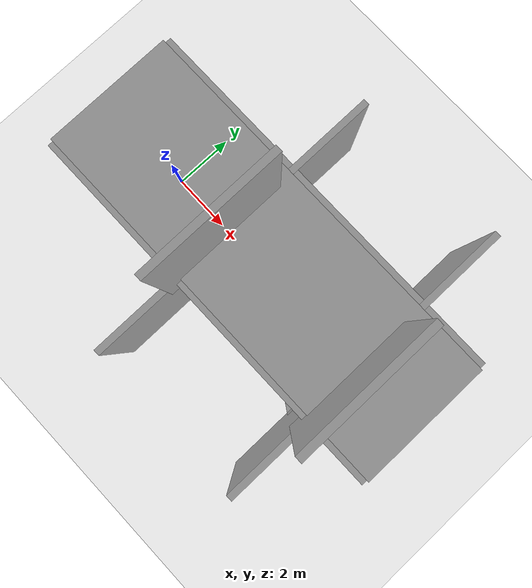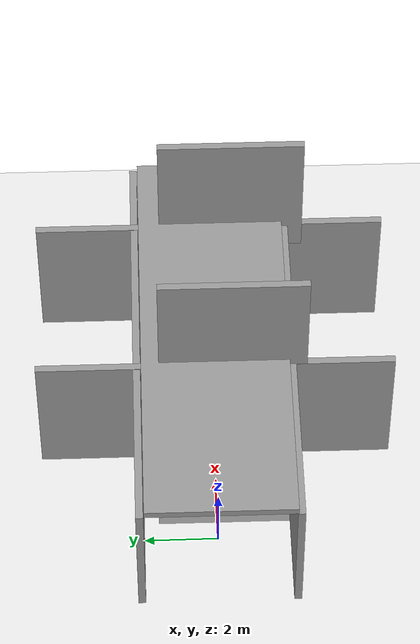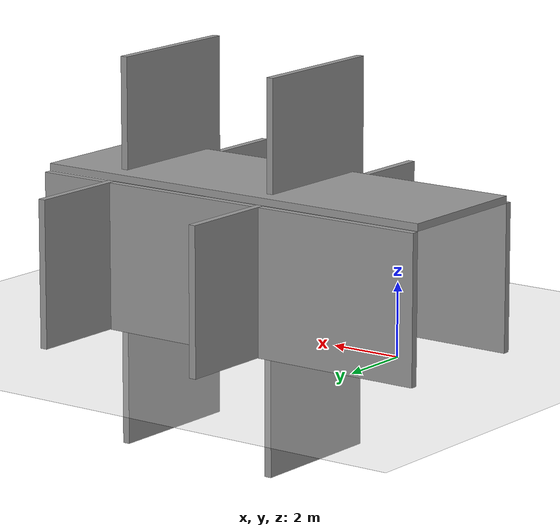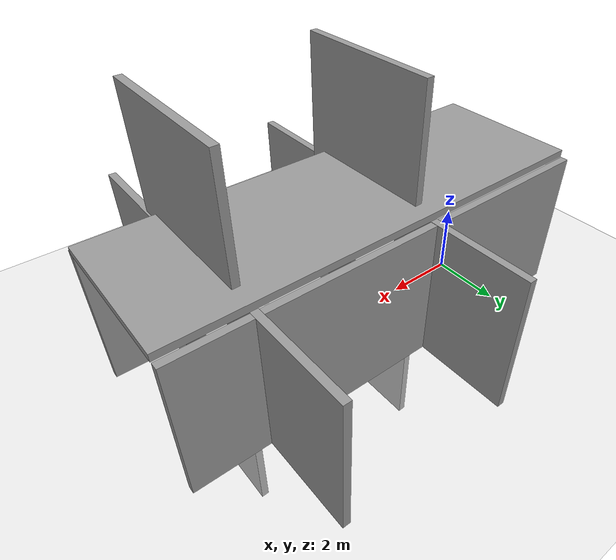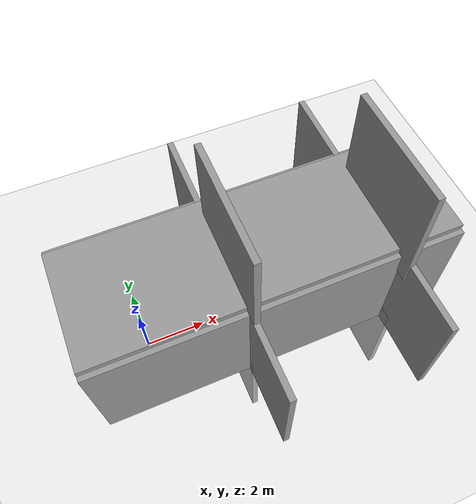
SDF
<sdf version="1.7">
 <world name="default">
  <model name="ground_plane">
   <static>1</static>
   <link name="link">
    <collision name="collision">
     <geometry><plane><normal>0 0 1</normal><size>100 100</size></plane></geometry>
     <surface>
      <contact><collide_bitmask>65535</collide_bitmask></contact>
      <friction><ode><mu>100</mu><mu2>50</mu2></ode></friction>
     </surface>
    </collision>
    <visual name="visual">
     <cast_shadows>0</cast_shadows>
     <geometry><plane><normal>0 0 1</normal><size>100 100</size></plane></geometry>
     <material>
      <script><uri>file://media/materials/scripts/gazebo.material</uri><name>Gazebo/Grey</name></script>
     </material>
    </visual>
   </link>
  </model>
  <model name="grey_wall">
   <static>1</static>
   <link name="link">
    <pose>0 0 2 0 -0 0</pose>
    <collision name="collision"><geometry><box><size>12 0.2 4</size></box></geometry></collision>
    <visual name="visual">
     <cast_shadows>0</cast_shadows>
     <geometry><box><size>12 0.2 4</size></box></geometry>
     <material><script><name>vrc/grey_wall</name><uri>__default__</uri></script></material>
    </visual>
   </link>
   <pose>4.00391 -2.09108 0.00243 0 -0 0</pose>
  </model>
  <model name="grey_wall_clone">
   <static>1</static>
   <link name="link">
    <pose>0 0 2 0 -0 0</pose>
    <collision name="collision"><geometry><box><size>12 0.2 4</size></box></geometry></collision>
    <visual name="visual">
     <cast_shadows>0</cast_shadows>
     <geometry><box><size>12 0.2 4</size></box></geometry>
     <material><script><name>vrc/grey_wall</name><uri>__default__</uri></script></material>
    </visual>
   </link>
   <pose>4.00436 2.10473 -0.00644 0 -0 0</pose>
  </model>
  <model name="grey_wall_0_clone_0">
   <static>1</static>
   <link name="link">
    <pose>0 0 2 0 -0 0</pose>
    <collision name="collision"><geometry><box><size>0.2 4 4</size></box></geometry></collision>
    <visual name="visual">
     <cast_shadows>0</cast_shadows>
     <geometry><box><size>0.2 4 4</size></box></geometry>
     <material><script><name>vrc/grey_wall</name><uri>__default__</uri></script></material>
    </visual>
   </link>
   <pose>2.94625 2.82856 0 0 -0 0</pose>
  </model>
  <model name="grey_wall_0_clone_1">
   <static>1</static>
   <link name="link">
    <pose>0 0 2 0 -0 0</pose>
    <collision name="collision"><geometry><box><size>0.2 4 4</size></box></geometry></collision>
    <visual name="visual">
     <cast_shadows>0</cast_shadows>
     <geometry><box><size>0.2 4 4</size></box></geometry>
     <material><script><name>vrc/grey_wall</name><uri>__default__</uri></script></material>
    </visual>
   </link>
   <pose>7.87479 2.84716 0 0 -0 0</pose>
  </model>
  <model name="grey_wall_0_clone_2">
   <static>1</static>
   <link name="link">
    <pose>0 0 2 0 -0 0</pose>
    <collision name="collision"><geometry><box><size>0.2 4 4</size></box></geometry></collision>
    <visual name="visual">
     <cast_shadows>0</cast_shadows>
     <geometry><box><size>0.2 4 4</size></box></geometry>
     <material><script><name>vrc/grey_wall</name><uri>__default__</uri></script></material>
    </visual>
   </link>
   <pose>2.98969 -2.86611 0 0 -0 0</pose>
  </model>
  <model name="grey_wall_0_clone_3">
   <static>1</static>
   <link name="link">
    <pose>0 0 2 0 -0 0</pose>
    <collision name="collision"><geometry><box><size>0.2 4 4</size></box></geometry></collision>
    <visual name="visual">
     <cast_shadows>0</cast_shadows>
     <geometry><box><size>0.2 4 4</size></box></geometry>
     <material><script><name>vrc/grey_wall</name><uri>__default__</uri></script></material>
    </visual>
   </link>
   <pose>7.95689 -2.83465 0 0 -0 0</pose>
  </model>
  <model name="grey_wall_1">
   <static>1</static>
   <link name="link">
    <pose>0 0 2 0 -0 0</pose>
    <collision name="collision"><geometry><box><size>12 4 0.2</size></box></geometry></collision>
    <visual name="visual">
     <cast_shadows>0</cast_shadows>
     <geometry><box><size>12 4 0.2</size></box></geometry>
     <material><script><name>vrc/grey_wall</name><uri>__default__</uri></script></material>
    </visual>
   </link>
   <pose>4.01388 -0.014578 2.09857 0 -0 0</pose>
  </model>
  <model name="grey_wall_0_clone_1_clone_0_clone_clone">
   <static>1</static>
   <link name="link">
    <pose>0 0 2 0 -0 0</pose>
    <collision name="collision"><geometry><box><size>0.2 4 4</size></box></geometry></collision>
    <visual name="visual">
     <cast_shadows>0</cast_shadows>
     <geometry><box><size>0.2 4 4</size></box></geometry>
     <material><script><name>vrc/grey_wall</name><uri>__default__</uri></script></material>
    </visual>
   </link>
   <pose>7.90163 -0.590147 3.25039 0 -0 0</pose>
  </model>
  <model name="grey_wall_0_clone_1_clone_0_clone_clone_0">
   <static>1</static>
   <link name="link">
    <pose>0 0 2 0 -0 0</pose>
    <collision name="collision"><geometry><box><size>0.2 4 4</size></box></geometry></collision>
    <visual name="visual">
     <cast_shadows>0</cast_shadows>
     <geometry><box><size>0.2 4 4</size></box></geometry>
     <material><script><name>vrc/grey_wall</name><uri>__default__</uri></script></material>
    </visual>
   </link>
   <pose>2.99979 -0.490015 3.25039 0 -0 0</pose>
  </model>
  <model name="grey_wall_0_clone_1_clone_0_clone_clone_1_clone">
   <static>1</static>
   <link name="link">
    <pose>0 0 2 0 -0 0</pose>
    <collision name="collision"><geometry><box><size>0.2 4 4</size></box></geometry></collision>
    <visual name="visual">
     <cast_shadows>0</cast_shadows>
     <geometry><box><size>0.2 4 4</size></box></geometry>
     <material><script><name>vrc/grey_wall</name><uri>__default__</uri></script></material>
    </visual>
   </link>
   <pose>7.95608 -0.613712 -3.38849 0 -0 0</pose>
  </model>
  <model name="grey_wall_0_clone_1_clone_0_clone_clone_1_clone_0">
   <static>1</static>
   <link name="link">
    <pose>0 0 2 0 -0 0</pose>
    <collision name="collision"><geometry><box><size>0.2 4 4</size></box></geometry></collision>
    <visual name="visual">
     <cast_shadows>0</cast_shadows>
     <geometry><box><size>0.2 4 4</size></box></geometry>
     <material><script><name>vrc/grey_wall</name><uri>__default__</uri></script></material>
    </visual>
   </link>
   <pose>2.97984 -0.384429 -3.38849 0 -0 0</pose>
  </model>
 </world>
</sdf>
